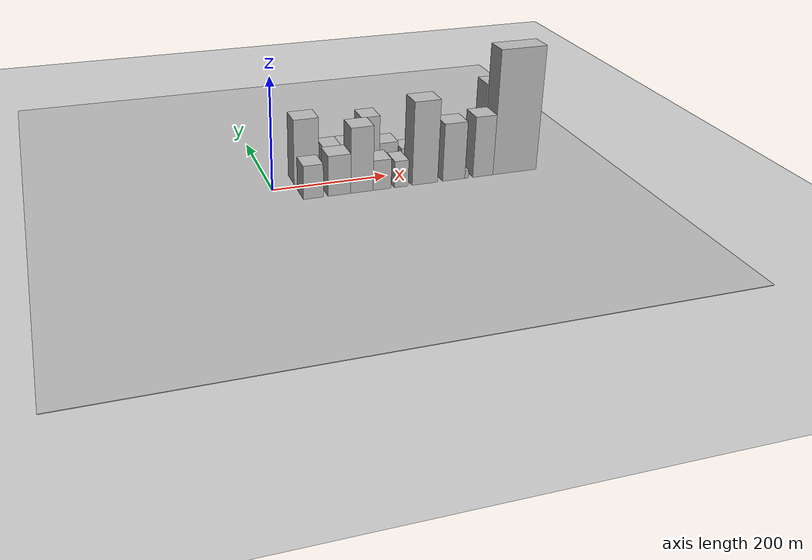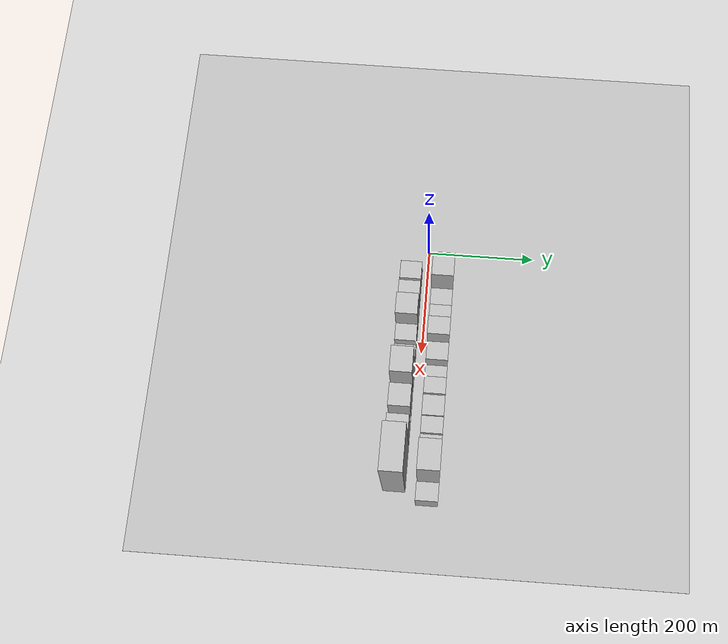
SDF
<?xml version="1.0" encoding="utf-8"?>

<sdf version="1.6">

   <world name="default">

      <gui fullscreen="0">

         <camera name="user_camera">

            <pose>-15 0 4.57585 0 0 0</pose>

            <view_controller>orbit</view_controller>

         </camera>

      </gui>

      <scene>

         <sky>

           <clouds>

             <speed>12</speed>

           </clouds>

         </sky>

         <ambient>0.4 0.4 0.4 1</ambient>

         <background>0.7 0.7 0.7 1</background>

         <shadows>1</shadows>

      </scene>

      <gravity>0 0 -9.8066</gravity>

      <magnetic_field>6e-06 2.3e-05 -4.2e-05</magnetic_field>

      <physics default="0" name="default_physics" type="ode">

         <ode>

            <solver>

               <type>quick</type>

               <iters>10</iters>

               <sor>1.0</sor>

               <use_dynamic_moi_rescaling>0</use_dynamic_moi_rescaling>

            </solver>

            <constraints>

               <cfm>0</cfm>

               <erp>0.2</erp>

               <contact_max_correcting_vel>100</contact_max_correcting_vel>

               <contact_surface_layer>0.001</contact_surface_layer>

            </constraints>

         </ode>

         <max_step_size>0.004</max_step_size>

         <real_time_factor>1</real_time_factor>

         <real_time_update_rate>250</real_time_update_rate>

      </physics>

      <light name="sun" type="directional">

         <cast_shadows>1</cast_shadows>

         <pose>0 0 10 0 0 0</pose>

         <diffuse>0.8 0.8 0.8 1</diffuse>

         <specular>0.2 0.2 0.2 1</specular>

         <attenuation>

            <range>1000</range>

            <constant>0.9</constant>

            <linear>0.01</linear>

            <quadratic>0.001</quadratic>

         </attenuation>

         <direction>-0.5 0.1 -0.9</direction>

      </light>

      <include>

         <name>ground_plane_1</name>

         <uri>model://HANNAS_ground_plane</uri>

         <pose>0 0 0  0 0 0</pose>

      </include>

      <include>

         <name>ground_plane_2</name>

         <uri>model://HANNAS_ground_plane</uri>

         <pose>100 0 0  0 0 0</pose>

      </include>

      <model name="building_1">

         <static>1</static>

         <pose frame="">61.8488 30.0000 0 0.000000 0.000000 1.570796</pose>

         <link name="link">

            <pose frame="">0 0 58.50 0 0 0</pose>

            <collision name="collision">

               <geometry>

                  <box>

                     <size>40.0000 43.6977 117.0000</size>

                  </box>

               </geometry>

               <max_contacts>10</max_contacts>

               <surface>

                  <contact>

                     <ode/>

                  </contact>

                  <bounce/>

                  <friction>

                     <torsional>

                        <ode/>

                     </torsional>

                     <ode/>

                  </friction>

               </surface>

            </collision>

            <visual name="visual">

               <cast_shadows>0</cast_shadows>

               <geometry>

                  <box>

                     <size>40.0000 43.6977 117.0000</size>

                  </box>

               </geometry>

               <material>

                  <script>

                     <uri>model://HANNAS_wall/materials/scripts</uri>

                     <uri>model://HANNAS_wall/materials/textures</uri>

                     <name>vrc/HANNAS_wall</name>

                  </script>

               </material>

            </visual>

            <self_collide>0</self_collide>

            <enable_wind>0</enable_wind>

            <kinematic>0</kinematic>

         </link>

      </model>

      <model name="building_2">

         <static>1</static>

         <pose frame="">106.5754 30.0000 0 0.000000 0.000000 1.570796</pose>

         <link name="link">

            <pose frame="">0 0 31.50 0 0 0</pose>

            <collision name="collision">

               <geometry>

                  <box>

                     <size>40.0000 31.7555 63.0000</size>

                  </box>

               </geometry>

               <max_contacts>10</max_contacts>

               <surface>

                  <contact>

                     <ode/>

                  </contact>

                  <bounce/>

                  <friction>

                     <torsional>

                        <ode/>

                     </torsional>

                     <ode/>

                  </friction>

               </surface>

            </collision>

            <visual name="visual">

               <cast_shadows>0</cast_shadows>

               <geometry>

                  <box>

                     <size>40.0000 31.7555 63.0000</size>

                  </box>

               </geometry>

               <material>

                  <script>

                     <uri>model://HANNAS_wall/materials/scripts</uri>

                     <uri>model://HANNAS_wall/materials/textures</uri>

                     <name>vrc/HANNAS_wall</name>

                  </script>

               </material>

            </visual>

            <self_collide>0</self_collide>

            <enable_wind>0</enable_wind>

            <kinematic>0</kinematic>

         </link>

      </model>

      <model name="building_3">

         <static>1</static>

         <pose frame="">140.5686 30.0000 0 0.000000 0.000000 1.570796</pose>

         <link name="link">

            <pose frame="">0 0 31.50 0 0 0</pose>

            <collision name="collision">

               <geometry>

                  <box>

                     <size>40.0000 36.2309 63.0000</size>

                  </box>

               </geometry>

               <max_contacts>10</max_contacts>

               <surface>

                  <contact>

                     <ode/>

                  </contact>

                  <bounce/>

                  <friction>

                     <torsional>

                        <ode/>

                     </torsional>

                     <ode/>

                  </friction>

               </surface>

            </collision>

            <visual name="visual">

               <cast_shadows>0</cast_shadows>

               <geometry>

                  <box>

                     <size>40.0000 36.2309 63.0000</size>

                  </box>

               </geometry>

               <material>

                  <script>

                     <uri>model://HANNAS_wall/materials/scripts</uri>

                     <uri>model://HANNAS_wall/materials/textures</uri>

                     <name>vrc/HANNAS_wall</name>

                  </script>

               </material>

            </visual>

            <self_collide>0</self_collide>

            <enable_wind>0</enable_wind>

            <kinematic>0</kinematic>

         </link>

      </model>

      <model name="building_4">

         <static>1</static>

         <pose frame="">175.1720 30.0000 0 0.000000 0.000000 1.570796</pose>

         <link name="link">

            <pose frame="">0 0 54.00 0 0 0</pose>

            <collision name="collision">

               <geometry>

                  <box>

                     <size>40.0000 32.9758 108.0000</size>

                  </box>

               </geometry>

               <max_contacts>10</max_contacts>

               <surface>

                  <contact>

                     <ode/>

                  </contact>

                  <bounce/>

                  <friction>

                     <torsional>

                        <ode/>

                     </torsional>

                     <ode/>

                  </friction>

               </surface>

            </collision>

            <visual name="visual">

               <cast_shadows>0</cast_shadows>

               <geometry>

                  <box>

                     <size>40.0000 32.9758 108.0000</size>

                  </box>

               </geometry>

               <material>

                  <script>

                     <uri>model://HANNAS_wall/materials/scripts</uri>

                     <uri>model://HANNAS_wall/materials/textures</uri>

                     <name>vrc/HANNAS_wall</name>

                  </script>

               </material>

            </visual>

            <self_collide>0</self_collide>

            <enable_wind>0</enable_wind>

            <kinematic>0</kinematic>

         </link>

      </model>

      <model name="building_5">

         <static>1</static>

         <pose frame="">208.5088 30.0000 0 0.000000 0.000000 1.570796</pose>

         <link name="link">

            <pose frame="">0 0 28.50 0 0 0</pose>

            <collision name="collision">

               <geometry>

                  <box>

                     <size>40.0000 33.6977 57.0000</size>

                  </box>

               </geometry>

               <max_contacts>10</max_contacts>

               <surface>

                  <contact>

                     <ode/>

                  </contact>

                  <bounce/>

                  <friction>

                     <torsional>

                        <ode/>

                     </torsional>

                     <ode/>

                  </friction>

               </surface>

            </collision>

            <visual name="visual">

               <cast_shadows>0</cast_shadows>

               <geometry>

                  <box>

                     <size>40.0000 33.6977 57.0000</size>

                  </box>

               </geometry>

               <material>

                  <script>

                     <uri>model://HANNAS_wall/materials/scripts</uri>

                     <uri>model://HANNAS_wall/materials/textures</uri>

                     <name>vrc/HANNAS_wall</name>

                  </script>

               </material>

            </visual>

            <self_collide>0</self_collide>

            <enable_wind>0</enable_wind>

            <kinematic>0</kinematic>

         </link>

      </model>

      <model name="building_6">

         <static>1</static>

         <pose frame="">244.8640 30.0000 0 0.000000 0.000000 1.570796</pose>

         <link name="link">

            <pose frame="">0 0 21.00 0 0 0</pose>

            <collision name="collision">

               <geometry>

                  <box>

                     <size>40.0000 25.0128 42.0000</size>

                  </box>

               </geometry>

               <max_contacts>10</max_contacts>

               <surface>

                  <contact>

                     <ode/>

                  </contact>

                  <bounce/>

                  <friction>

                     <torsional>

                        <ode/>

                     </torsional>

                     <ode/>

                  </friction>

               </surface>

            </collision>

            <visual name="visual">

               <cast_shadows>0</cast_shadows>

               <geometry>

                  <box>

                     <size>40.0000 25.0128 42.0000</size>

                  </box>

               </geometry>

               <material>

                  <script>

                     <uri>model://HANNAS_wall/materials/scripts</uri>

                     <uri>model://HANNAS_wall/materials/textures</uri>

                     <name>vrc/HANNAS_wall</name>

                  </script>

               </material>

            </visual>

            <self_collide>0</self_collide>

            <enable_wind>0</enable_wind>

            <kinematic>0</kinematic>

         </link>

      </model>

      <model name="building_7">

         <static>1</static>

         <pose frame="">272.7892 30.0000 0 0.000000 0.000000 1.570796</pose>

         <link name="link">

            <pose frame="">0 0 28.50 0 0 0</pose>

            <collision name="collision">

               <geometry>

                  <box>

                     <size>40.0000 30.8376 57.0000</size>

                  </box>

               </geometry>

               <max_contacts>10</max_contacts>

               <surface>

                  <contact>

                     <ode/>

                  </contact>

                  <bounce/>

                  <friction>

                     <torsional>

                        <ode/>

                     </torsional>

                     <ode/>

                  </friction>

               </surface>

            </collision>

            <visual name="visual">

               <cast_shadows>0</cast_shadows>

               <geometry>

                  <box>

                     <size>40.0000 30.8376 57.0000</size>

                  </box>

               </geometry>

               <material>

                  <script>

                     <uri>model://HANNAS_wall/materials/scripts</uri>

                     <uri>model://HANNAS_wall/materials/textures</uri>

                     <name>vrc/HANNAS_wall</name>

                  </script>

               </material>

            </visual>

            <self_collide>0</self_collide>

            <enable_wind>0</enable_wind>

            <kinematic>0</kinematic>

         </link>

      </model>

      <model name="building_8">

         <static>1</static>

         <pose frame="">310.9772 30.0000 0 0.000000 0.000000 1.570796</pose>

         <link name="link">

            <pose frame="">0 0 31.50 0 0 0</pose>

            <collision name="collision">

               <geometry>

                  <box>

                     <size>40.0000 37.5384 63.0000</size>

                  </box>

               </geometry>

               <max_contacts>10</max_contacts>

               <surface>

                  <contact>

                     <ode/>

                  </contact>

                  <bounce/>

                  <friction>

                     <torsional>

                        <ode/>

                     </torsional>

                     <ode/>

                  </friction>

               </surface>

            </collision>

            <visual name="visual">

               <cast_shadows>0</cast_shadows>

               <geometry>

                  <box>

                     <size>40.0000 37.5384 63.0000</size>

                  </box>

               </geometry>

               <material>

                  <script>

                     <uri>model://HANNAS_wall/materials/scripts</uri>

                     <uri>model://HANNAS_wall/materials/textures</uri>

                     <name>vrc/HANNAS_wall</name>

                  </script>

               </material>

            </visual>

            <self_collide>0</self_collide>

            <enable_wind>0</enable_wind>

            <kinematic>0</kinematic>

         </link>

      </model>

      <model name="building_9">

         <static>1</static>

         <pose frame="">345.2372 30.0000 0 0.000000 0.000000 1.570796</pose>

         <link name="link">

            <pose frame="">0 0 28.50 0 0 0</pose>

            <collision name="collision">

               <geometry>

                  <box>

                     <size>40.0000 30.9815 57.0000</size>

                  </box>

               </geometry>

               <max_contacts>10</max_contacts>

               <surface>

                  <contact>

                     <ode/>

                  </contact>

                  <bounce/>

                  <friction>

                     <torsional>

                        <ode/>

                     </torsional>

                     <ode/>

                  </friction>

               </surface>

            </collision>

            <visual name="visual">

               <cast_shadows>0</cast_shadows>

               <geometry>

                  <box>

                     <size>40.0000 30.9815 57.0000</size>

                  </box>

               </geometry>

               <material>

                  <script>

                     <uri>model://HANNAS_wall/materials/scripts</uri>

                     <uri>model://HANNAS_wall/materials/textures</uri>

                     <name>vrc/HANNAS_wall</name>

                  </script>

               </material>

            </visual>

            <self_collide>0</self_collide>

            <enable_wind>0</enable_wind>

            <kinematic>0</kinematic>

         </link>

      </model>

      <model name="building_10">

         <static>1</static>

         <pose frame="">373.4800 30.0000 0 0.000000 0.000000 1.570796</pose>

         <link name="link">

            <pose frame="">0 0 22.50 0 0 0</pose>

            <collision name="collision">

               <geometry>

                  <box>

                     <size>40.0000 25.5041 45.0000</size>

                  </box>

               </geometry>

               <max_contacts>10</max_contacts>

               <surface>

                  <contact>

                     <ode/>

                  </contact>

                  <bounce/>

                  <friction>

                     <torsional>

                        <ode/>

                     </torsional>

                     <ode/>

                  </friction>

               </surface>

            </collision>

            <visual name="visual">

               <cast_shadows>0</cast_shadows>

               <geometry>

                  <box>

                     <size>40.0000 25.5041 45.0000</size>

                  </box>

               </geometry>

               <material>

                  <script>

                     <uri>model://HANNAS_wall/materials/scripts</uri>

                     <uri>model://HANNAS_wall/materials/textures</uri>

                     <name>vrc/HANNAS_wall</name>

                  </script>

               </material>

            </visual>

            <self_collide>0</self_collide>

            <enable_wind>0</enable_wind>

            <kinematic>0</kinematic>

         </link>

      </model>

      <model name="building_11">

         <static>1</static>

         <pose frame="">413.4992 30.0000 0 0.000000 0.000000 1.570796</pose>

         <link name="link">

            <pose frame="">0 0 72.00 0 0 0</pose>

            <collision name="collision">

               <geometry>

                  <box>

                     <size>40.0000 54.5343 144.0000</size>

                  </box>

               </geometry>

               <max_contacts>10</max_contacts>

               <surface>

                  <contact>

                     <ode/>

                  </contact>

                  <bounce/>

                  <friction>

                     <torsional>

                        <ode/>

                     </torsional>

                     <ode/>

                  </friction>

               </surface>

            </collision>

            <visual name="visual">

               <cast_shadows>0</cast_shadows>

               <geometry>

                  <box>

                     <size>40.0000 54.5343 144.0000</size>

                  </box>

               </geometry>

               <material>

                  <script>

                     <uri>model://HANNAS_wall/materials/scripts</uri>

                     <uri>model://HANNAS_wall/materials/textures</uri>

                     <name>vrc/HANNAS_wall</name>

                  </script>

               </material>

            </visual>

            <self_collide>0</self_collide>

            <enable_wind>0</enable_wind>

            <kinematic>0</kinematic>

         </link>

      </model>

      <model name="building_12">

         <static>1</static>

         <pose frame="">465.4071 30.0000 0 0.000000 0.000000 1.570796</pose>

         <link name="link">

            <pose frame="">0 0 33.00 0 0 0</pose>

            <collision name="collision">

               <geometry>

                  <box>

                     <size>40.0000 33.2815 66.0000</size>

                  </box>

               </geometry>

               <max_contacts>10</max_contacts>

               <surface>

                  <contact>

                     <ode/>

                  </contact>

                  <bounce/>

                  <friction>

                     <torsional>

                        <ode/>

                     </torsional>

                     <ode/>

                  </friction>

               </surface>

            </collision>

            <visual name="visual">

               <cast_shadows>0</cast_shadows>

               <geometry>

                  <box>

                     <size>40.0000 33.2815 66.0000</size>

                  </box>

               </geometry>

               <material>

                  <script>

                     <uri>model://HANNAS_wall/materials/scripts</uri>

                     <uri>model://HANNAS_wall/materials/textures</uri>

                     <name>vrc/HANNAS_wall</name>

                  </script>

               </material>

            </visual>

            <self_collide>0</self_collide>

            <enable_wind>0</enable_wind>

            <kinematic>0</kinematic>

         </link>

      </model>

      <model name="building_13">

         <static>1</static>

         <pose frame="">56.9562 -30.0000 0 0.000000 0.000000 1.570796</pose>

         <link name="link">

            <pose frame="">0 0 30.00 0 0 0</pose>

            <collision name="collision">

               <geometry>

                  <box>

                     <size>40.0000 33.9124 60.0000</size>

                  </box>

               </geometry>

               <max_contacts>10</max_contacts>

               <surface>

                  <contact>

                     <ode/>

                  </contact>

                  <bounce/>

                  <friction>

                     <torsional>

                        <ode/>

                     </torsional>

                     <ode/>

                  </friction>

               </surface>

            </collision>

            <visual name="visual">

               <cast_shadows>0</cast_shadows>

               <geometry>

                  <box>

                     <size>40.0000 33.9124 60.0000</size>

                  </box>

               </geometry>

               <material>

                  <script>

                     <uri>model://HANNAS_wall/materials/scripts</uri>

                     <uri>model://HANNAS_wall/materials/textures</uri>

                     <name>vrc/HANNAS_wall</name>

                  </script>

               </material>

            </visual>

            <self_collide>0</self_collide>

            <enable_wind>0</enable_wind>

            <kinematic>0</kinematic>

         </link>

      </model>

      <model name="building_14">

         <static>1</static>

         <pose frame="">101.5500 -30.0000 0 0.000000 0.000000 1.570796</pose>

         <link name="link">

            <pose frame="">0 0 36.00 0 0 0</pose>

            <collision name="collision">

               <geometry>

                  <box>

                     <size>40.0000 39.2753 72.0000</size>

                  </box>

               </geometry>

               <max_contacts>10</max_contacts>

               <surface>

                  <contact>

                     <ode/>

                  </contact>

                  <bounce/>

                  <friction>

                     <torsional>

                        <ode/>

                     </torsional>

                     <ode/>

                  </friction>

               </surface>

            </collision>

            <visual name="visual">

               <cast_shadows>0</cast_shadows>

               <geometry>

                  <box>

                     <size>40.0000 39.2753 72.0000</size>

                  </box>

               </geometry>

               <material>

                  <script>

                     <uri>model://HANNAS_wall/materials/scripts</uri>

                     <uri>model://HANNAS_wall/materials/textures</uri>

                     <name>vrc/HANNAS_wall</name>

                  </script>

               </material>

            </visual>

            <self_collide>0</self_collide>

            <enable_wind>0</enable_wind>

            <kinematic>0</kinematic>

         </link>

      </model>

      <model name="building_15">

         <static>1</static>

         <pose frame="">140.8429 -30.0000 0 0.000000 0.000000 1.570796</pose>

         <link name="link">

            <pose frame="">0 0 58.50 0 0 0</pose>

            <collision name="collision">

               <geometry>

                  <box>

                     <size>40.0000 39.3104 117.0000</size>

                  </box>

               </geometry>

               <max_contacts>10</max_contacts>

               <surface>

                  <contact>

                     <ode/>

                  </contact>

                  <bounce/>

                  <friction>

                     <torsional>

                        <ode/>

                     </torsional>

                     <ode/>

                  </friction>

               </surface>

            </collision>

            <visual name="visual">

               <cast_shadows>0</cast_shadows>

               <geometry>

                  <box>

                     <size>40.0000 39.3104 117.0000</size>

                  </box>

               </geometry>

               <material>

                  <script>

                     <uri>model://HANNAS_wall/materials/scripts</uri>

                     <uri>model://HANNAS_wall/materials/textures</uri>

                     <name>vrc/HANNAS_wall</name>

                  </script>

               </material>

            </visual>

            <self_collide>0</self_collide>

            <enable_wind>0</enable_wind>

            <kinematic>0</kinematic>

         </link>

      </model>

      <model name="building_16">

         <static>1</static>

         <pose frame="">176.3378 -30.0000 0 0.000000 0.000000 1.570796</pose>

         <link name="link">

            <pose frame="">0 0 27.00 0 0 0</pose>

            <collision name="collision">

               <geometry>

                  <box>

                     <size>40.0000 31.6794 54.0000</size>

                  </box>

               </geometry>

               <max_contacts>10</max_contacts>

               <surface>

                  <contact>

                     <ode/>

                  </contact>

                  <bounce/>

                  <friction>

                     <torsional>

                        <ode/>

                     </torsional>

                     <ode/>

                  </friction>

               </surface>

            </collision>

            <visual name="visual">

               <cast_shadows>0</cast_shadows>

               <geometry>

                  <box>

                     <size>40.0000 31.6794 54.0000</size>

                  </box>

               </geometry>

               <material>

                  <script>

                     <uri>model://HANNAS_wall/materials/scripts</uri>

                     <uri>model://HANNAS_wall/materials/textures</uri>

                     <name>vrc/HANNAS_wall</name>

                  </script>

               </material>

            </visual>

            <self_collide>0</self_collide>

            <enable_wind>0</enable_wind>

            <kinematic>0</kinematic>

         </link>

      </model>

      <model name="building_17">

         <static>1</static>

         <pose frame="">210.5148 -30.0000 0 0.000000 0.000000 1.570796</pose>

         <link name="link">

            <pose frame="">0 0 24.00 0 0 0</pose>

            <collision name="collision">

               <geometry>

                  <box>

                     <size>40.0000 24.6745 48.0000</size>

                  </box>

               </geometry>

               <max_contacts>10</max_contacts>

               <surface>

                  <contact>

                     <ode/>

                  </contact>

                  <bounce/>

                  <friction>

                     <torsional>

                        <ode/>

                     </torsional>

                     <ode/>

                  </friction>

               </surface>

            </collision>

            <visual name="visual">

               <cast_shadows>0</cast_shadows>

               <geometry>

                  <box>

                     <size>40.0000 24.6745 48.0000</size>

                  </box>

               </geometry>

               <material>

                  <script>

                     <uri>model://HANNAS_wall/materials/scripts</uri>

                     <uri>model://HANNAS_wall/materials/textures</uri>

                     <name>vrc/HANNAS_wall</name>

                  </script>

               </material>

            </visual>

            <self_collide>0</self_collide>

            <enable_wind>0</enable_wind>

            <kinematic>0</kinematic>

         </link>

      </model>

      <model name="building_18">

         <static>1</static>

         <pose frame="">252.9781 -30.0000 0 0.000000 0.000000 1.570796</pose>

         <link name="link">

            <pose frame="">0 0 75.00 0 0 0</pose>

            <collision name="collision">

               <geometry>

                  <box>

                     <size>40.0000 46.2522 150.0000</size>

                  </box>

               </geometry>

               <max_contacts>10</max_contacts>

               <surface>

                  <contact>

                     <ode/>

                  </contact>

                  <bounce/>

                  <friction>

                     <torsional>

                        <ode/>

                     </torsional>

                     <ode/>

                  </friction>

               </surface>

            </collision>

            <visual name="visual">

               <cast_shadows>0</cast_shadows>

               <geometry>

                  <box>

                     <size>40.0000 46.2522 150.0000</size>

                  </box>

               </geometry>

               <material>

                  <script>

                     <uri>model://HANNAS_wall/materials/scripts</uri>

                     <uri>model://HANNAS_wall/materials/textures</uri>

                     <name>vrc/HANNAS_wall</name>

                  </script>

               </material>

            </visual>

            <self_collide>0</self_collide>

            <enable_wind>0</enable_wind>

            <kinematic>0</kinematic>

         </link>

      </model>

      <model name="building_19">

         <static>1</static>

         <pose frame="">305.6555 -30.0000 0 0.000000 0.000000 1.570796</pose>

         <link name="link">

            <pose frame="">0 0 52.50 0 0 0</pose>

            <collision name="collision">

               <geometry>

                  <box>

                     <size>40.0000 41.1027 105.0000</size>

                  </box>

               </geometry>

               <max_contacts>10</max_contacts>

               <surface>

                  <contact>

                     <ode/>

                  </contact>

                  <bounce/>

                  <friction>

                     <torsional>

                        <ode/>

                     </torsional>

                     <ode/>

                  </friction>

               </surface>

            </collision>

            <visual name="visual">

               <cast_shadows>0</cast_shadows>

               <geometry>

                  <box>

                     <size>40.0000 41.1027 105.0000</size>

                  </box>

               </geometry>

               <material>

                  <script>

                     <uri>model://HANNAS_wall/materials/scripts</uri>

                     <uri>model://HANNAS_wall/materials/textures</uri>

                     <name>vrc/HANNAS_wall</name>

                  </script>

               </material>

            </visual>

            <self_collide>0</self_collide>

            <enable_wind>0</enable_wind>

            <kinematic>0</kinematic>

         </link>

      </model>

      <model name="building_20">

         <static>1</static>

         <pose frame="">329.5823 -30.0000 0 0.000000 0.000000 1.570796</pose>

         <link name="link">

            <pose frame="">0 0 7.50 0 0 0</pose>

            <collision name="collision">

               <geometry>

                  <box>

                     <size>40.0000 6.7508 15.0000</size>

                  </box>

               </geometry>

               <max_contacts>10</max_contacts>

               <surface>

                  <contact>

                     <ode/>

                  </contact>

                  <bounce/>

                  <friction>

                     <torsional>

                        <ode/>

                     </torsional>

                     <ode/>

                  </friction>

               </surface>

            </collision>

            <visual name="visual">

               <cast_shadows>0</cast_shadows>

               <geometry>

                  <box>

                     <size>40.0000 6.7508 15.0000</size>

                  </box>

               </geometry>

               <material>

                  <script>

                     <uri>model://HANNAS_wall/materials/scripts</uri>

                     <uri>model://HANNAS_wall/materials/textures</uri>

                     <name>vrc/HANNAS_wall</name>

                  </script>

               </material>

            </visual>

            <self_collide>0</self_collide>

            <enable_wind>0</enable_wind>

            <kinematic>0</kinematic>

         </link>

      </model>

      <model name="building_21">

         <static>1</static>

         <pose frame="">359.7637 -30.0000 0 0.000000 0.000000 1.570796</pose>

         <link name="link">

            <pose frame="">0 0 55.50 0 0 0</pose>

            <collision name="collision">

               <geometry>

                  <box>

                     <size>40.0000 37.6119 111.0000</size>

                  </box>

               </geometry>

               <max_contacts>10</max_contacts>

               <surface>

                  <contact>

                     <ode/>

                  </contact>

                  <bounce/>

                  <friction>

                     <torsional>

                        <ode/>

                     </torsional>

                     <ode/>

                  </friction>

               </surface>

            </collision>

            <visual name="visual">

               <cast_shadows>0</cast_shadows>

               <geometry>

                  <box>

                     <size>40.0000 37.6119 111.0000</size>

                  </box>

               </geometry>

               <material>

                  <script>

                     <uri>model://HANNAS_wall/materials/scripts</uri>

                     <uri>model://HANNAS_wall/materials/textures</uri>

                     <name>vrc/HANNAS_wall</name>

                  </script>

               </material>

            </visual>

            <self_collide>0</self_collide>

            <enable_wind>0</enable_wind>

            <kinematic>0</kinematic>

         </link>

      </model>

      <model name="building_22">

         <static>1</static>

         <pose frame="">419.5539 -30.0000 0 0.000000 0.000000 1.570796</pose>

         <link name="link">

            <pose frame="">0 0 112.50 0 0 0</pose>

            <collision name="collision">

               <geometry>

                  <box>

                     <size>40.0000 81.9686 225.0000</size>

                  </box>

               </geometry>

               <max_contacts>10</max_contacts>

               <surface>

                  <contact>

                     <ode/>

                  </contact>

                  <bounce/>

                  <friction>

                     <torsional>

                        <ode/>

                     </torsional>

                     <ode/>

                  </friction>

               </surface>

            </collision>

            <visual name="visual">

               <cast_shadows>0</cast_shadows>

               <geometry>

                  <box>

                     <size>40.0000 81.9686 225.0000</size>

                  </box>

               </geometry>

               <material>

                  <script>

                     <uri>model://HANNAS_wall/materials/scripts</uri>

                     <uri>model://HANNAS_wall/materials/textures</uri>

                     <name>vrc/HANNAS_wall</name>

                  </script>

               </material>

            </visual>

            <self_collide>0</self_collide>

            <enable_wind>0</enable_wind>

            <kinematic>0</kinematic>

         </link>

      </model>

   </world>

</sdf>

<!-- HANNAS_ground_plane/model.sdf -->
<sdf version="1.4">
<model name="HANNAS_ground_plane">
  <static>true</static>
    <link name="link">
      <collision name="collision">
        <geometry>
          <plane>
            <normal>0 0 1</normal>
            <size>1000 1000</size>
          </plane>
        </geometry>
        <surface>
          <friction>
            <ode>
              <mu>100</mu>
              <mu2>50</mu2>
            </ode>
          </friction>
        </surface>
      </collision>
      <visual name="visual">
        <cast_shadows>false</cast_shadows>
        <geometry>
          <plane>
            <normal>0 0 1</normal>
            <size>1000 1000</size>
          </plane>
        </geometry>
        <material>
          <script>
            <uri>model://HANNAS_ground_plane/materials/scripts/HANNAS_ground_plane.material</uri>
	    <uri>model://HANNAS_ground_plane/materials/textures</uri>
            <name>HANNASGroundPlane/Image</name>
          </script>
        </material>
      </visual>
    </link>
  </model>
</sdf>
